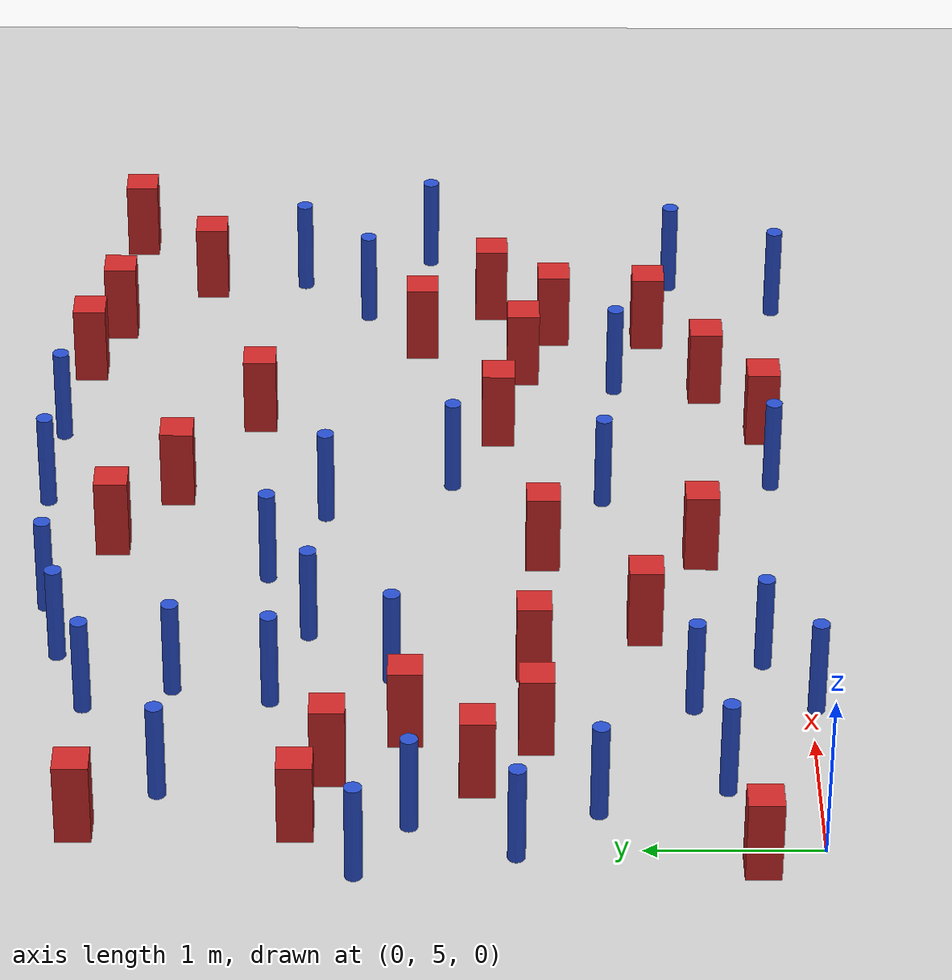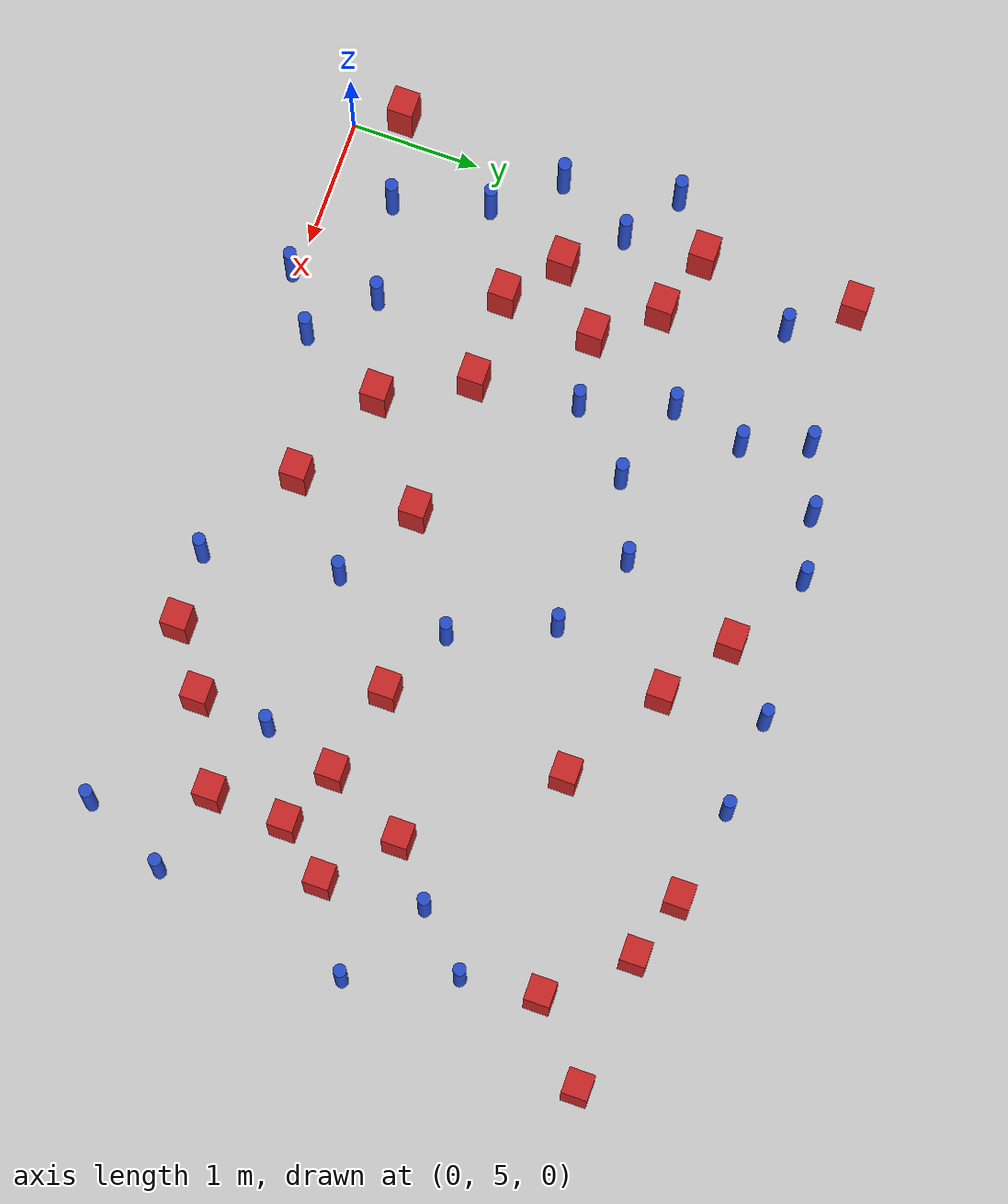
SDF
<sdf version="1.6">
 <world name="default">
  <model name="ground_plane">
   <static>1</static>
   <link name="link">
    <collision name="collision">
     <geometry><plane><normal>0 0 1</normal><size>100 100</size></plane></geometry>
     <surface><friction><ode><mu>100</mu><mu2>50</mu2></ode></friction></surface>
    </collision>
    <visual name="visual">
     <cast_shadows>0</cast_shadows>
     <geometry><plane><normal>0 0 1</normal><size>100 100</size></plane></geometry>
     <material>
      <ambient>1.0 1.0 1.0 1.0</ambient>
      <diffuse>0.8 0.8 0.8 1.0</diffuse>
      <specular>0.01 0.01 0.01 1.000000</specular>
     </material>
    </visual>
   </link>
  </model>
  <model name="pole_obstacle1">
   <static>true</static>
   <pose>1.57403197315 7.37901727268 7.38925637345e-09 -8.47170692799e-08 1.24976765033e-08 -1.74513093018e-07</pose>
   <link name="link">
    <pose>0 0 0.3 0 -0 0</pose>
    <inertial>
     <mass>1</mass>
     <inertia><ixx>0.145833</ixx><ixy>0</ixy><ixz>0</ixz><iyy>0.145833</iyy><iyz>0</iyz><izz>0.125</izz></inertia>
    </inertial>
    <collision name="collision">
     <geometry><cylinder><radius>0.05</radius><length>.6</length></cylinder></geometry>
    </collision>
    <visual name="visual">
     <geometry><cylinder><radius>0.05</radius><length>.6</length></cylinder></geometry>
     <material>
      <script><name>Gazebo/Blue</name><uri>file://media/materials/scripts/gazebo.material</uri></script>
     </material>
    </visual>
   </link>
  </model>
  <model name="pole_obstacle2">
   <static>true</static>
   <pose>2.5913801027 8.11951139135 7.38925637345e-09 -8.47170692793e-08 1.24976764408e-08 -1.74513093041e-07</pose>
   <link name="link">
    <pose>0 0 0.3 0 -0 0</pose>
    <inertial>
     <mass>1</mass>
     <inertia><ixx>0.145833</ixx><ixy>0</ixy><ixz>0</ixz><iyy>0.145833</iyy><iyz>0</iyz><izz>0.125</izz></inertia>
    </inertial>
    <collision name="collision">
     <geometry><cylinder><radius>0.05</radius><length>.6</length></cylinder></geometry>
    </collision>
    <visual name="visual">
     <geometry><cylinder><radius>0.05</radius><length>.6</length></cylinder></geometry>
     <material>
      <script><name>Gazebo/Blue</name><uri>file://media/materials/scripts/gazebo.material</uri></script>
     </material>
    </visual>
   </link>
  </model>
  <model name="square_post_obstacle3">
   <static>true</static>
   <pose>5.90210192159 8.586843425 1.91545236811e-07 -7.35059704564e-06 1.12565212e-07 2.39332434364e-05</pose>
   <link name="link">
    <pose>0 0 0.25 0 -0 0</pose>
    <inertial>
     <mass>100</mass>
     <inertia>
      <ixx>0.166667</ixx>
      <ixy>0</ixy>
      <ixz>0</ixz>
      <iyy>0.166667</iyy>
      <iyz>0</iyz>
      <izz>0.166667</izz>
     </inertia>
    </inertial>
    <collision name="collision"><geometry><box><size>.2 .2 .5</size></box></geometry></collision>
    <visual name="visual">
     <geometry><box><size>.2 .2 .5</size></box></geometry>
     <material>
      <script><name>Gazebo/Red</name><uri>file://media/materials/scripts/gazebo.material</uri></script>
     </material>
    </visual>
   </link>
  </model>
  <model name="pole_obstacle7">
   <static>true</static>
   <pose>3.5924293416 5.09383726458 7.38925637345e-09 -8.47170692798e-08 1.24976765033e-08 -1.74513093019e-07</pose>
   <link name="link">
    <pose>0 0 0.3 0 -0 0</pose>
    <inertial>
     <mass>1</mass>
     <inertia><ixx>0.145833</ixx><ixy>0</ixy><ixz>0</ixz><iyy>0.145833</iyy><iyz>0</iyz><izz>0.125</izz></inertia>
    </inertial>
    <collision name="collision">
     <geometry><cylinder><radius>0.05</radius><length>.6</length></cylinder></geometry>
    </collision>
    <visual name="visual">
     <geometry><cylinder><radius>0.05</radius><length>.6</length></cylinder></geometry>
     <material>
      <script><name>Gazebo/Blue</name><uri>file://media/materials/scripts/gazebo.material</uri></script>
     </material>
    </visual>
   </link>
  </model>
  <model name="pole_obstacle11">
   <static>true</static>
   <pose>0.533642133794 5.50967781415 7.38925637345e-09 -8.47170692799e-08 1.24976765073e-08 -1.74513093015e-07</pose>
   <link name="link">
    <pose>0 0 0.3 0 -0 0</pose>
    <inertial>
     <mass>1</mass>
     <inertia><ixx>0.145833</ixx><ixy>0</ixy><ixz>0</ixz><iyy>0.145833</iyy><iyz>0</iyz><izz>0.125</izz></inertia>
    </inertial>
    <collision name="collision">
     <geometry><cylinder><radius>0.05</radius><length>.6</length></cylinder></geometry>
    </collision>
    <visual name="visual">
     <geometry><cylinder><radius>0.05</radius><length>.6</length></cylinder></geometry>
     <material>
      <script><name>Gazebo/Blue</name><uri>file://media/materials/scripts/gazebo.material</uri></script>
     </material>
    </visual>
   </link>
  </model>
  <model name="pole_obstacle16">
   <static>true</static>
   <pose>-0.0589049012718 6.68679805793 7.38925637345e-09 -8.47170692799e-08 1.24976765086e-08 -1.74513093017e-07</pose>
   <link name="link">
    <pose>0 0 0.3 0 -0 0</pose>
    <inertial>
     <mass>1</mass>
     <inertia><ixx>0.145833</ixx><ixy>0</ixy><ixz>0</ixz><iyy>0.145833</iyy><iyz>0</iyz><izz>0.125</izz></inertia>
    </inertial>
    <collision name="collision">
     <geometry><cylinder><radius>0.05</radius><length>.6</length></cylinder></geometry>
    </collision>
    <visual name="visual">
     <geometry><cylinder><radius>0.05</radius><length>.6</length></cylinder></geometry>
     <material>
      <script><name>Gazebo/Blue</name><uri>file://media/materials/scripts/gazebo.material</uri></script>
     </material>
    </visual>
   </link>
  </model>
  <model name="square_post_obstacle18">
   <static>true</static>
   <pose>5.63057441655 6.77977751946 1.91545236811e-07 -7.35059704564e-06 1.12565212e-07 2.39332434364e-05</pose>
   <link name="link">
    <pose>0 0 0.25 0 -0 0</pose>
    <inertial>
     <mass>100</mass>
     <inertia>
      <ixx>0.166667</ixx>
      <ixy>0</ixy>
      <ixz>0</ixz>
      <iyy>0.166667</iyy>
      <iyz>0</iyz>
      <izz>0.166667</izz>
     </inertia>
    </inertial>
    <collision name="collision"><geometry><box><size>.2 .2 .5</size></box></geometry></collision>
    <visual name="visual">
     <geometry><box><size>.2 .2 .5</size></box></geometry>
     <material>
      <script><name>Gazebo/Red</name><uri>file://media/materials/scripts/gazebo.material</uri></script>
     </material>
    </visual>
   </link>
  </model>
  <model name="pole_obstacle31">
   <static>true</static>
   <pose>3.24161377764 7.79161407037 7.38925637345e-09 -8.47170692798e-08 1.24976765033e-08 -1.74513093019e-07</pose>
   <link name="link">
    <pose>0 0 0.3 0 -0 0</pose>
    <inertial>
     <mass>1</mass>
     <inertia><ixx>0.145833</ixx><ixy>0</ixy><ixz>0</ixz><iyy>0.145833</iyy><iyz>0</iyz><izz>0.125</izz></inertia>
    </inertial>
    <collision name="collision">
     <geometry><cylinder><radius>0.05</radius><length>.6</length></cylinder></geometry>
    </collision>
    <visual name="visual">
     <geometry><cylinder><radius>0.05</radius><length>.6</length></cylinder></geometry>
     <material>
      <script><name>Gazebo/Blue</name><uri>file://media/materials/scripts/gazebo.material</uri></script>
     </material>
    </visual>
   </link>
  </model>
  <model name="pole_obstacle41">
   <static>true</static>
   <pose>5.64052913057 4.96952285973 7.38925637345e-09 -8.47170692796e-08 1.24976764786e-08 -1.74513093032e-07</pose>
   <link name="link">
    <pose>0 0 0.3 0 -0 0</pose>
    <inertial>
     <mass>1</mass>
     <inertia><ixx>0.145833</ixx><ixy>0</ixy><ixz>0</ixz><iyy>0.145833</iyy><iyz>0</iyz><izz>0.125</izz></inertia>
    </inertial>
    <collision name="collision">
     <geometry><cylinder><radius>0.05</radius><length>.6</length></cylinder></geometry>
    </collision>
    <visual name="visual">
     <geometry><cylinder><radius>0.05</radius><length>.6</length></cylinder></geometry>
     <material>
      <script><name>Gazebo/Blue</name><uri>file://media/materials/scripts/gazebo.material</uri></script>
     </material>
    </visual>
   </link>
  </model>
  <model name="pole_obstacle47">
   <static>true</static>
   <pose>5.96579804063 7.98579329881 7.38925637345e-09 -8.47170692799e-08 1.24976765036e-08 -1.74513093018e-07</pose>
   <link name="link">
    <pose>0 0 0.3 0 -0 0</pose>
    <inertial>
     <mass>1</mass>
     <inertia><ixx>0.145833</ixx><ixy>0</ixy><ixz>0</ixz><iyy>0.145833</iyy><iyz>0</iyz><izz>0.125</izz></inertia>
    </inertial>
    <collision name="collision">
     <geometry><cylinder><radius>0.05</radius><length>.6</length></cylinder></geometry>
    </collision>
    <visual name="visual">
     <geometry><cylinder><radius>0.05</radius><length>.6</length></cylinder></geometry>
     <material>
      <script><name>Gazebo/Blue</name><uri>file://media/materials/scripts/gazebo.material</uri></script>
     </material>
    </visual>
   </link>
  </model>
  <model name="pole_obstacle53">
   <static>true</static>
   <pose>0.207067746759 7.27028966046 7.38925637345e-09 -8.471706928e-08 1.24976765124e-08 -1.74513093014e-07</pose>
   <link name="link">
    <pose>0 0 0.3 0 -0 0</pose>
    <inertial>
     <mass>1</mass>
     <inertia><ixx>0.145833</ixx><ixy>0</ixy><ixz>0</ixz><iyy>0.145833</iyy><iyz>0</iyz><izz>0.125</izz></inertia>
    </inertial>
    <collision name="collision">
     <geometry><cylinder><radius>0.05</radius><length>.6</length></cylinder></geometry>
    </collision>
    <visual name="visual">
     <geometry><cylinder><radius>0.05</radius><length>.6</length></cylinder></geometry>
     <material>
      <script><name>Gazebo/Blue</name><uri>file://media/materials/scripts/gazebo.material</uri></script>
     </material>
    </visual>
   </link>
  </model>
  <model name="pole_obstacle64">
   <static>true</static>
   <pose>1.79984485225 9.31005967538 7.38925637345e-09 -8.47170692798e-08 1.24976764881e-08 -1.74513093027e-07</pose>
   <link name="link">
    <pose>0 0 0.3 0 -0 0</pose>
    <inertial>
     <mass>1</mass>
     <inertia><ixx>0.145833</ixx><ixy>0</ixy><ixz>0</ixz><iyy>0.145833</iyy><iyz>0</iyz><izz>0.125</izz></inertia>
    </inertial>
    <collision name="collision">
     <geometry><cylinder><radius>0.05</radius><length>.6</length></cylinder></geometry>
    </collision>
    <visual name="visual">
     <geometry><cylinder><radius>0.05</radius><length>.6</length></cylinder></geometry>
     <material>
      <script><name>Gazebo/Blue</name><uri>file://media/materials/scripts/gazebo.material</uri></script>
     </material>
    </visual>
   </link>
  </model>
  <model name="square_post_obstacle54">
   <static>true</static>
   <pose>4.28912074097 8.22105510719 1.91545236811e-07 -7.35059704564e-06 1.12565212e-07 2.39332434364e-05</pose>
   <link name="link">
    <pose>0 0 0.25 0 -0 0</pose>
    <inertial>
     <mass>100</mass>
     <inertia>
      <ixx>0.166667</ixx>
      <ixy>0</ixy>
      <ixz>0</ixz>
      <iyy>0.166667</iyy>
      <iyz>0</iyz>
      <izz>0.166667</izz>
     </inertia>
    </inertial>
    <collision name="collision"><geometry><box><size>.2 .2 .5</size></box></geometry></collision>
    <visual name="visual">
     <geometry><box><size>.2 .2 .5</size></box></geometry>
     <material>
      <script><name>Gazebo/Red</name><uri>file://media/materials/scripts/gazebo.material</uri></script>
     </material>
    </visual>
   </link>
  </model>
  <model name="square_post_obstacle55">
   <static>true</static>
   <pose>2.93284468258 9.05396232431 1.91545236811e-07 -7.35059704564e-06 1.12565212e-07 2.39332434364e-05</pose>
   <link name="link">
    <pose>0 0 0.25 0 -0 0</pose>
    <inertial>
     <mass>100</mass>
     <inertia>
      <ixx>0.166667</ixx>
      <ixy>0</ixy>
      <ixz>0</ixz>
      <iyy>0.166667</iyy>
      <iyz>0</iyz>
      <izz>0.166667</izz>
     </inertia>
    </inertial>
    <collision name="collision"><geometry><box><size>.2 .2 .5</size></box></geometry></collision>
    <visual name="visual">
     <geometry><box><size>.2 .2 .5</size></box></geometry>
     <material>
      <script><name>Gazebo/Red</name><uri>file://media/materials/scripts/gazebo.material</uri></script>
     </material>
    </visual>
   </link>
  </model>
  <model name="pole_obstacle72">
   <static>true</static>
   <pose>1.46530541276 8.62909703748 7.38925637345e-09 -8.47170692798e-08 1.24976764881e-08 -1.74513093027e-07</pose>
   <link name="link">
    <pose>0 0 0.3 0 -0 0</pose>
    <inertial>
     <mass>1</mass>
     <inertia><ixx>0.145833</ixx><ixy>0</ixy><ixz>0</ixz><iyy>0.145833</iyy><iyz>0</iyz><izz>0.125</izz></inertia>
    </inertial>
    <collision name="collision">
     <geometry><cylinder><radius>0.05</radius><length>.6</length></cylinder></geometry>
    </collision>
    <visual name="visual">
     <geometry><cylinder><radius>0.05</radius><length>.6</length></cylinder></geometry>
     <material>
      <script><name>Gazebo/Blue</name><uri>file://media/materials/scripts/gazebo.material</uri></script>
     </material>
    </visual>
   </link>
  </model>
  <model name="square_post_obstacle62">
   <static>true</static>
   <pose>0.565453499938 6.89716072347 1.91545236811e-07 -7.35059704564e-06 1.12565212e-07 2.39332434364e-05</pose>
   <link name="link">
    <pose>0 0 0.25 0 -0 0</pose>
    <inertial>
     <mass>100</mass>
     <inertia>
      <ixx>0.166667</ixx>
      <ixy>0</ixy>
      <ixz>0</ixz>
      <iyy>0.166667</iyy>
      <iyz>0</iyz>
      <izz>0.166667</izz>
     </inertia>
    </inertial>
    <collision name="collision"><geometry><box><size>.2 .2 .5</size></box></geometry></collision>
    <visual name="visual">
     <geometry><box><size>.2 .2 .5</size></box></geometry>
     <material>
      <script><name>Gazebo/Red</name><uri>file://media/materials/scripts/gazebo.material</uri></script>
     </material>
    </visual>
   </link>
  </model>
  <model name="pole_obstacle74">
   <static>true</static>
   <pose>2.00342862465 7.86418572244 7.38925637345e-09 -8.47170692799e-08 1.24976765014e-08 -1.7451309302e-07</pose>
   <link name="link">
    <pose>0 0 0.3 0 -0 0</pose>
    <inertial>
     <mass>1</mass>
     <inertia><ixx>0.145833</ixx><ixy>0</ixy><ixz>0</ixz><iyy>0.145833</iyy><iyz>0</iyz><izz>0.125</izz></inertia>
    </inertial>
    <collision name="collision">
     <geometry><cylinder><radius>0.05</radius><length>.6</length></cylinder></geometry>
    </collision>
    <visual name="visual">
     <geometry><cylinder><radius>0.05</radius><length>.6</length></cylinder></geometry>
     <material>
      <script><name>Gazebo/Blue</name><uri>file://media/materials/scripts/gazebo.material</uri></script>
     </material>
    </visual>
   </link>
  </model>
  <model name="pole_obstacle78">
   <static>true</static>
   <pose>0.492716819287 8.66307397775 7.38925637345e-09 -8.47170692797e-08 1.24976764852e-08 -1.74513093028e-07</pose>
   <link name="link">
    <pose>0 0 0.3 0 -0 0</pose>
    <inertial>
     <mass>1</mass>
     <inertia><ixx>0.145833</ixx><ixy>0</ixy><ixz>0</ixz><iyy>0.145833</iyy><iyz>0</iyz><izz>0.125</izz></inertia>
    </inertial>
    <collision name="collision">
     <geometry><cylinder><radius>0.05</radius><length>.6</length></cylinder></geometry>
    </collision>
    <visual name="visual">
     <geometry><cylinder><radius>0.05</radius><length>.6</length></cylinder></geometry>
     <material>
      <script><name>Gazebo/Blue</name><uri>file://media/materials/scripts/gazebo.material</uri></script>
     </material>
    </visual>
   </link>
  </model>
  <model name="square_post_obstacle68">
   <static>true</static>
   <pose>2.01666054303 5.91865294078 1.91545236811e-07 -7.35059704564e-06 1.12565212e-07 2.39332434364e-05</pose>
   <link name="link">
    <pose>0 0 0.25 0 -0 0</pose>
    <inertial>
     <mass>100</mass>
     <inertia>
      <ixx>0.166667</ixx>
      <ixy>0</ixy>
      <ixz>0</ixz>
      <iyy>0.166667</iyy>
      <iyz>0</iyz>
      <izz>0.166667</izz>
     </inertia>
    </inertial>
    <collision name="collision"><geometry><box><size>.2 .2 .5</size></box></geometry></collision>
    <visual name="visual">
     <geometry><box><size>.2 .2 .5</size></box></geometry>
     <material>
      <script><name>Gazebo/Red</name><uri>file://media/materials/scripts/gazebo.material</uri></script>
     </material>
    </visual>
   </link>
  </model>
  <model name="square_post_obstacle73">
   <static>true</static>
   <pose>0.958053837621 6.56475185936 1.91545236811e-07 -7.35059704564e-06 1.12565212e-07 2.39332434364e-05</pose>
   <link name="link">
    <pose>0 0 0.25 0 -0 0</pose>
    <inertial>
     <mass>100</mass>
     <inertia>
      <ixx>0.166667</ixx>
      <ixy>0</ixy>
      <ixz>0</ixz>
      <iyy>0.166667</iyy>
      <iyz>0</iyz>
      <izz>0.166667</izz>
     </inertia>
    </inertial>
    <collision name="collision"><geometry><box><size>.2 .2 .5</size></box></geometry></collision>
    <visual name="visual">
     <geometry><box><size>.2 .2 .5</size></box></geometry>
     <material>
      <script><name>Gazebo/Red</name><uri>file://media/materials/scripts/gazebo.material</uri></script>
     </material>
    </visual>
   </link>
  </model>
  <model name="pole_obstacle90">
   <static>true</static>
   <pose>1.29207790326 5.66311853379 7.38925637345e-09 -8.47170692799e-08 1.24976765033e-08 -1.74513093018e-07</pose>
   <link name="link">
    <pose>0 0 0.3 0 -0 0</pose>
    <inertial>
     <mass>1</mass>
     <inertia><ixx>0.145833</ixx><ixy>0</ixy><ixz>0</ixz><iyy>0.145833</iyy><iyz>0</iyz><izz>0.125</izz></inertia>
    </inertial>
    <collision name="collision">
     <geometry><cylinder><radius>0.05</radius><length>.6</length></cylinder></geometry>
    </collision>
    <visual name="visual">
     <geometry><cylinder><radius>0.05</radius><length>.6</length></cylinder></geometry>
     <material>
      <script><name>Gazebo/Blue</name><uri>file://media/materials/scripts/gazebo.material</uri></script>
     </material>
    </visual>
   </link>
  </model>
  <model name="square_post_obstacle84">
   <static>true</static>
   <pose>5.39692821579 9.14887952335 1.91545236811e-07 -7.35059704564e-06 1.12565212e-07 2.39332434364e-05</pose>
   <link name="link">
    <pose>0 0 0.25 0 -0 0</pose>
    <inertial>
     <mass>100</mass>
     <inertia>
      <ixx>0.166667</ixx>
      <ixy>0</ixy>
      <ixz>0</ixz>
      <iyy>0.166667</iyy>
      <iyz>0</iyz>
      <izz>0.166667</izz>
     </inertia>
    </inertial>
    <collision name="collision"><geometry><box><size>.2 .2 .5</size></box></geometry></collision>
    <visual name="visual">
     <geometry><box><size>.2 .2 .5</size></box></geometry>
     <material>
      <script><name>Gazebo/Red</name><uri>file://media/materials/scripts/gazebo.material</uri></script>
     </material>
    </visual>
   </link>
  </model>
  <model name="pole_obstacle95">
   <static>true</static>
   <pose>3.5805048973 7.03011001787 7.38925637345e-09 -8.47170692798e-08 1.24976765033e-08 -1.74513093019e-07</pose>
   <link name="link">
    <pose>0 0 0.3 0 -0 0</pose>
    <inertial>
     <mass>1</mass>
     <inertia><ixx>0.145833</ixx><ixy>0</ixy><ixz>0</ixz><iyy>0.145833</iyy><iyz>0</iyz><izz>0.125</izz></inertia>
    </inertial>
    <collision name="collision">
     <geometry><cylinder><radius>0.05</radius><length>.6</length></cylinder></geometry>
    </collision>
    <visual name="visual">
     <geometry><cylinder><radius>0.05</radius><length>.6</length></cylinder></geometry>
     <material>
      <script><name>Gazebo/Blue</name><uri>file://media/materials/scripts/gazebo.material</uri></script>
     </material>
    </visual>
   </link>
  </model>
  <model name="square_post_obstacle89">
   <static>true</static>
   <pose>0.664742930996 7.72542410299 1.91545236811e-07 -7.35059704564e-06 1.12565212e-07 2.39332434364e-05</pose>
   <link name="link">
    <pose>0 0 0.25 0 -0 0</pose>
    <inertial>
     <mass>100</mass>
     <inertia>
      <ixx>0.166667</ixx>
      <ixy>0</ixy>
      <ixz>0</ixz>
      <iyy>0.166667</iyy>
      <iyz>0</iyz>
      <izz>0.166667</izz>
     </inertia>
    </inertial>
    <collision name="collision"><geometry><box><size>.2 .2 .5</size></box></geometry></collision>
    <visual name="visual">
     <geometry><box><size>.2 .2 .5</size></box></geometry>
     <material>
      <script><name>Gazebo/Red</name><uri>file://media/materials/scripts/gazebo.material</uri></script>
     </material>
    </visual>
   </link>
  </model>
  <model name="pole_obstacle98">
   <static>true</static>
   <pose>4.67914809474 6.01574066378 7.38925637345e-09 -8.47170692796e-08 1.24976764786e-08 -1.74513093032e-07</pose>
   <link name="link">
    <pose>0 0 0.3 0 -0 0</pose>
    <inertial>
     <mass>1</mass>
     <inertia><ixx>0.145833</ixx><ixy>0</ixy><ixz>0</ixz><iyy>0.145833</iyy><iyz>0</iyz><izz>0.125</izz></inertia>
    </inertial>
    <collision name="collision">
     <geometry><cylinder><radius>0.05</radius><length>.6</length></cylinder></geometry>
    </collision>
    <visual name="visual">
     <geometry><cylinder><radius>0.05</radius><length>.6</length></cylinder></geometry>
     <material>
      <script><name>Gazebo/Blue</name><uri>file://media/materials/scripts/gazebo.material</uri></script>
     </material>
    </visual>
   </link>
  </model>
  <model name="pole_obstacle101">
   <static>true</static>
   <pose>6.26414295263 7.17044186161 7.38925637345e-09 -8.47170692796e-08 1.24976764786e-08 -1.74513093032e-07</pose>
   <link name="link">
    <pose>0 0 0.3 0 -0 0</pose>
    <inertial>
     <mass>1</mass>
     <inertia><ixx>0.145833</ixx><ixy>0</ixy><ixz>0</ixz><iyy>0.145833</iyy><iyz>0</iyz><izz>0.125</izz></inertia>
    </inertial>
    <collision name="collision">
     <geometry><cylinder><radius>0.05</radius><length>.6</length></cylinder></geometry>
    </collision>
    <visual name="visual">
     <geometry><cylinder><radius>0.05</radius><length>.6</length></cylinder></geometry>
     <material>
      <script><name>Gazebo/Blue</name><uri>file://media/materials/scripts/gazebo.material</uri></script>
     </material>
    </visual>
   </link>
  </model>
  <model name="square_post_obstacle94">
   <static>true</static>
   <pose>6.45047289811 9.06751850785 1.91545236811e-07 -7.35059704564e-06 1.12565212e-07 2.39332434364e-05</pose>
   <link name="link">
    <pose>0 0 0.25 0 -0 0</pose>
    <inertial>
     <mass>100</mass>
     <inertia>
      <ixx>0.166667</ixx>
      <ixy>0</ixy>
      <ixz>0</ixz>
      <iyy>0.166667</iyy>
      <iyz>0</iyz>
      <izz>0.166667</izz>
     </inertia>
    </inertial>
    <collision name="collision"><geometry><box><size>.2 .2 .5</size></box></geometry></collision>
    <visual name="visual">
     <geometry><box><size>.2 .2 .5</size></box></geometry>
     <material>
      <script><name>Gazebo/Red</name><uri>file://media/materials/scripts/gazebo.material</uri></script>
     </material>
    </visual>
   </link>
  </model>
  <model name="square_post_obstacle105">
   <static>true</static>
   <pose>1.02723549142 7.29663299393 1.91545236811e-07 -7.35059704564e-06 1.12565212e-07 2.39332434364e-05</pose>
   <link name="link">
    <pose>0 0 0.25 0 -0 0</pose>
    <inertial>
     <mass>100</mass>
     <inertia>
      <ixx>0.166667</ixx>
      <ixy>0</ixy>
      <ixz>0</ixz>
      <iyy>0.166667</iyy>
      <iyz>0</iyz>
      <izz>0.166667</izz>
     </inertia>
    </inertial>
    <collision name="collision"><geometry><box><size>.2 .2 .5</size></box></geometry></collision>
    <visual name="visual">
     <geometry><box><size>.2 .2 .5</size></box></geometry>
     <material>
      <script><name>Gazebo/Red</name><uri>file://media/materials/scripts/gazebo.material</uri></script>
     </material>
    </visual>
   </link>
  </model>
  <model name="square_post_obstacle113">
   <static>true</static>
   <pose>4.63088764255 5.45287345867 1.91545236811e-07 -7.35059704564e-06 1.12565212e-07 2.39332434364e-05</pose>
   <link name="link">
    <pose>0 0 0.25 0 -0 0</pose>
    <inertial>
     <mass>100</mass>
     <inertia>
      <ixx>0.166667</ixx>
      <ixy>0</ixy>
      <ixz>0</ixz>
      <iyy>0.166667</iyy>
      <iyz>0</iyz>
      <izz>0.166667</izz>
     </inertia>
    </inertial>
    <collision name="collision"><geometry><box><size>.2 .2 .5</size></box></geometry></collision>
    <visual name="visual">
     <geometry><box><size>.2 .2 .5</size></box></geometry>
     <material>
      <script><name>Gazebo/Red</name><uri>file://media/materials/scripts/gazebo.material</uri></script>
     </material>
    </visual>
   </link>
  </model>
  <model name="square_post_obstacle115">
   <static>true</static>
   <pose>3.4704970924 8.69236890157 1.91545236811e-07 -7.35059704564e-06 1.12565212e-07 2.39332434364e-05</pose>
   <link name="link">
    <pose>0 0 0.25 0 -0 0</pose>
    <inertial>
     <mass>100</mass>
     <inertia>
      <ixx>0.166667</ixx>
      <ixy>0</ixy>
      <ixz>0</ixz>
      <iyy>0.166667</iyy>
      <iyz>0</iyz>
      <izz>0.166667</izz>
     </inertia>
    </inertial>
    <collision name="collision"><geometry><box><size>.2 .2 .5</size></box></geometry></collision>
    <visual name="visual">
     <geometry><box><size>.2 .2 .5</size></box></geometry>
     <material>
      <script><name>Gazebo/Red</name><uri>file://media/materials/scripts/gazebo.material</uri></script>
     </material>
    </visual>
   </link>
  </model>
  <model name="pole_obstacle117">
   <static>true</static>
   <pose>5.56615097828 7.56775488405 7.38925637345e-09 -8.47170692796e-08 1.24976764786e-08 -1.74513093032e-07</pose>
   <link name="link">
    <pose>0 0 0.3 0 -0 0</pose>
    <inertial>
     <mass>1</mass>
     <inertia><ixx>0.145833</ixx><ixy>0</ixy><ixz>0</ixz><iyy>0.145833</iyy><iyz>0</iyz><izz>0.125</izz></inertia>
    </inertial>
    <collision name="collision">
     <geometry><cylinder><radius>0.05</radius><length>.6</length></cylinder></geometry>
    </collision>
    <visual name="visual">
     <geometry><cylinder><radius>0.05</radius><length>.6</length></cylinder></geometry>
     <material>
      <script><name>Gazebo/Blue</name><uri>file://media/materials/scripts/gazebo.material</uri></script>
     </material>
    </visual>
   </link>
  </model>
  <model name="pole_obstacle124">
   <static>true</static>
   <pose>1.73070726445 5.25015986021 7.38925637345e-09 -8.47170692799e-08 1.24976765033e-08 -1.74513093018e-07</pose>
   <link name="link">
    <pose>0 0 0.3 0 -0 0</pose>
    <inertial>
     <mass>1</mass>
     <inertia><ixx>0.145833</ixx><ixy>0</ixy><ixz>0</ixz><iyy>0.145833</iyy><iyz>0</iyz><izz>0.125</izz></inertia>
    </inertial>
    <collision name="collision">
     <geometry><cylinder><radius>0.05</radius><length>.6</length></cylinder></geometry>
    </collision>
    <visual name="visual">
     <geometry><cylinder><radius>0.05</radius><length>.6</length></cylinder></geometry>
     <material>
      <script><name>Gazebo/Blue</name><uri>file://media/materials/scripts/gazebo.material</uri></script>
     </material>
    </visual>
   </link>
  </model>
  <model name="square_post_obstacle122">
   <static>true</static>
   <pose>4.89037951382 9.31066087084 1.91545236811e-07 -7.35059704564e-06 1.12565212e-07 2.39332434364e-05</pose>
   <link name="link">
    <pose>0 0 0.25 0 -0 0</pose>
    <inertial>
     <mass>100</mass>
     <inertia>
      <ixx>0.166667</ixx>
      <ixy>0</ixy>
      <ixz>0</ixz>
      <iyy>0.166667</iyy>
      <iyz>0</iyz>
      <izz>0.166667</izz>
     </inertia>
    </inertial>
    <collision name="collision"><geometry><box><size>.2 .2 .5</size></box></geometry></collision>
    <visual name="visual">
     <geometry><box><size>.2 .2 .5</size></box></geometry>
     <material>
      <script><name>Gazebo/Red</name><uri>file://media/materials/scripts/gazebo.material</uri></script>
     </material>
    </visual>
   </link>
  </model>
  <model name="square_post_obstacle129">
   <static>true</static>
   <pose>4.13521190248 6.74903641159 1.91545236811e-07 -7.35059704564e-06 1.12565212e-07 2.39332434364e-05</pose>
   <link name="link">
    <pose>0 0 0.25 0 -0 0</pose>
    <inertial>
     <mass>100</mass>
     <inertia>
      <ixx>0.166667</ixx>
      <ixy>0</ixy>
      <ixz>0</ixz>
      <iyy>0.166667</iyy>
      <iyz>0</iyz>
      <izz>0.166667</izz>
     </inertia>
    </inertial>
    <collision name="collision"><geometry><box><size>.2 .2 .5</size></box></geometry></collision>
    <visual name="visual">
     <geometry><box><size>.2 .2 .5</size></box></geometry>
     <material>
      <script><name>Gazebo/Red</name><uri>file://media/materials/scripts/gazebo.material</uri></script>
     </material>
    </visual>
   </link>
  </model>
  <model name="pole_obstacle139">
   <static>true</static>
   <pose>3.41035263347 6.12315111298 7.38925637345e-09 -8.47170692798e-08 1.24976765033e-08 -1.74513093019e-07</pose>
   <link name="link">
    <pose>0 0 0.3 0 -0 0</pose>
    <inertial>
     <mass>1</mass>
     <inertia><ixx>0.145833</ixx><ixy>0</ixy><ixz>0</ixz><iyy>0.145833</iyy><iyz>0</iyz><izz>0.125</izz></inertia>
    </inertial>
    <collision name="collision">
     <geometry><cylinder><radius>0.05</radius><length>.6</length></cylinder></geometry>
    </collision>
    <visual name="visual">
     <geometry><cylinder><radius>0.05</radius><length>.6</length></cylinder></geometry>
     <material>
      <script><name>Gazebo/Blue</name><uri>file://media/materials/scripts/gazebo.material</uri></script>
     </material>
    </visual>
   </link>
  </model>
  <model name="pole_obstacle143">
   <static>true</static>
   <pose>1.29174020536 9.12919920839 7.38925637345e-09 -8.47170692798e-08 1.24976764881e-08 -1.74513093027e-07</pose>
   <link name="link">
    <pose>0 0 0.3 0 -0 0</pose>
    <inertial>
     <mass>1</mass>
     <inertia><ixx>0.145833</ixx><ixy>0</ixy><ixz>0</ixz><iyy>0.145833</iyy><iyz>0</iyz><izz>0.125</izz></inertia>
    </inertial>
    <collision name="collision">
     <geometry><cylinder><radius>0.05</radius><length>.6</length></cylinder></geometry>
    </collision>
    <visual name="visual">
     <geometry><cylinder><radius>0.05</radius><length>.6</length></cylinder></geometry>
     <material>
      <script><name>Gazebo/Blue</name><uri>file://media/materials/scripts/gazebo.material</uri></script>
     </material>
    </visual>
   </link>
  </model>
  <model name="square_post_obstacle150">
   <static>true</static>
   <pose>2.77049625148 6.49701925575 1.91545236811e-07 -7.35059704564e-06 1.12565212e-07 2.39332434364e-05</pose>
   <link name="link">
    <pose>0 0 0.25 0 -0 0</pose>
    <inertial>
     <mass>100</mass>
     <inertia>
      <ixx>0.166667</ixx>
      <ixy>0</ixy>
      <ixz>0</ixz>
      <iyy>0.166667</iyy>
      <iyz>0</iyz>
      <izz>0.166667</izz>
     </inertia>
    </inertial>
    <collision name="collision"><geometry><box><size>.2 .2 .5</size></box></geometry></collision>
    <visual name="visual">
     <geometry><box><size>.2 .2 .5</size></box></geometry>
     <material>
      <script><name>Gazebo/Red</name><uri>file://media/materials/scripts/gazebo.material</uri></script>
     </material>
    </visual>
   </link>
  </model>
  <model name="square_post_obstacle153">
   <static>true</static>
   <pose>5.15467483725 7.21966940829 1.91545236811e-07 -7.35059704564e-06 1.12565212e-07 2.39332434364e-05</pose>
   <link name="link">
    <pose>0 0 0.25 0 -0 0</pose>
    <inertial>
     <mass>100</mass>
     <inertia>
      <ixx>0.166667</ixx>
      <ixy>0</ixy>
      <ixz>0</ixz>
      <iyy>0.166667</iyy>
      <iyz>0</iyz>
      <izz>0.166667</izz>
     </inertia>
    </inertial>
    <collision name="collision"><geometry><box><size>.2 .2 .5</size></box></geometry></collision>
    <visual name="visual">
     <geometry><box><size>.2 .2 .5</size></box></geometry>
     <material>
      <script><name>Gazebo/Red</name><uri>file://media/materials/scripts/gazebo.material</uri></script>
     </material>
    </visual>
   </link>
  </model>
  <model name="square_post_obstacle162">
   <static>true</static>
   <pose>0.164729977461 7.88962539093 1.91545236811e-07 -7.35059704564e-06 1.12565212e-07 2.39332434364e-05</pose>
   <link name="link">
    <pose>0 0 0.25 0 -0 0</pose>
    <inertial>
     <mass>100</mass>
     <inertia>
      <ixx>0.166667</ixx>
      <ixy>0</ixy>
      <ixz>0</ixz>
      <iyy>0.166667</iyy>
      <iyz>0</iyz>
      <izz>0.166667</izz>
     </inertia>
    </inertial>
    <collision name="collision"><geometry><box><size>.2 .2 .5</size></box></geometry></collision>
    <visual name="visual">
     <geometry><box><size>.2 .2 .5</size></box></geometry>
     <material>
      <script><name>Gazebo/Red</name><uri>file://media/materials/scripts/gazebo.material</uri></script>
     </material>
    </visual>
   </link>
  </model>
  <model name="square_post_obstacle164">
   <static>true</static>
   <pose>5.31592673885 6.38820734095 1.91545236811e-07 -7.35059704564e-06 1.12565212e-07 2.39332434364e-05</pose>
   <link name="link">
    <pose>0 0 0.25 0 -0 0</pose>
    <inertial>
     <mass>100</mass>
     <inertia>
      <ixx>0.166667</ixx>
      <ixy>0</ixy>
      <ixz>0</ixz>
      <iyy>0.166667</iyy>
      <iyz>0</iyz>
      <izz>0.166667</izz>
     </inertia>
    </inertial>
    <collision name="collision"><geometry><box><size>.2 .2 .5</size></box></geometry></collision>
    <visual name="visual">
     <geometry><box><size>.2 .2 .5</size></box></geometry>
     <material>
      <script><name>Gazebo/Red</name><uri>file://media/materials/scripts/gazebo.material</uri></script>
     </material>
    </visual>
   </link>
  </model>
  <model name="square_post_obstacle166">
   <static>true</static>
   <pose>4.84340130114 6.58752222666 1.91545236811e-07 -7.35059704564e-06 1.12565212e-07 2.39332434364e-05</pose>
   <link name="link">
    <pose>0 0 0.25 0 -0 0</pose>
    <inertial>
     <mass>100</mass>
     <inertia>
      <ixx>0.166667</ixx>
      <ixy>0</ixy>
      <ixz>0</ixz>
      <iyy>0.166667</iyy>
      <iyz>0</iyz>
      <izz>0.166667</izz>
     </inertia>
    </inertial>
    <collision name="collision"><geometry><box><size>.2 .2 .5</size></box></geometry></collision>
    <visual name="visual">
     <geometry><box><size>.2 .2 .5</size></box></geometry>
     <material>
      <script><name>Gazebo/Red</name><uri>file://media/materials/scripts/gazebo.material</uri></script>
     </material>
    </visual>
   </link>
  </model>
  <model name="square_post_obstacle170">
   <static>true</static>
   <pose>1.65463411906 6.56799251243 1.91545236811e-07 -7.35059704564e-06 1.12565212e-07 2.39332434364e-05</pose>
   <link name="link">
    <pose>0 0 0.25 0 -0 0</pose>
    <inertial>
     <mass>100</mass>
     <inertia>
      <ixx>0.166667</ixx>
      <ixy>0</ixy>
      <ixz>0</ixz>
      <iyy>0.166667</iyy>
      <iyz>0</iyz>
      <izz>0.166667</izz>
     </inertia>
    </inertial>
    <collision name="collision"><geometry><box><size>.2 .2 .5</size></box></geometry></collision>
    <visual name="visual">
     <geometry><box><size>.2 .2 .5</size></box></geometry>
     <material>
      <script><name>Gazebo/Red</name><uri>file://media/materials/scripts/gazebo.material</uri></script>
     </material>
    </visual>
   </link>
  </model>
  <model name="pole_obstacle173">
   <static>true</static>
   <pose>3.40496392075 9.47900574969 7.38925637345e-09 -8.47170692793e-08 1.24976764408e-08 -1.74513093041e-07</pose>
   <link name="link">
    <pose>0 0 0.3 0 -0 0</pose>
    <inertial>
     <mass>1</mass>
     <inertia><ixx>0.145833</ixx><ixy>0</ixy><ixz>0</ixz><iyy>0.145833</iyy><iyz>0</iyz><izz>0.125</izz></inertia>
    </inertial>
    <collision name="collision">
     <geometry><cylinder><radius>0.05</radius><length>.6</length></cylinder></geometry>
    </collision>
    <visual name="visual">
     <geometry><cylinder><radius>0.05</radius><length>.6</length></cylinder></geometry>
     <material>
      <script><name>Gazebo/Blue</name><uri>file://media/materials/scripts/gazebo.material</uri></script>
     </material>
    </visual>
   </link>
  </model>
  <model name="pole_obstacle175">
   <static>true</static>
   <pose>4.14299053738 9.4344835947 7.38925637345e-09 -8.471706928e-08 1.24976765081e-08 -1.74513093015e-07</pose>
   <link name="link">
    <pose>0 0 0.3 0 -0 0</pose>
    <inertial>
     <mass>1</mass>
     <inertia><ixx>0.145833</ixx><ixy>0</ixy><ixz>0</ixz><iyy>0.145833</iyy><iyz>0</iyz><izz>0.125</izz></inertia>
    </inertial>
    <collision name="collision">
     <geometry><cylinder><radius>0.05</radius><length>.6</length></cylinder></geometry>
    </collision>
    <visual name="visual">
     <geometry><cylinder><radius>0.05</radius><length>.6</length></cylinder></geometry>
     <material>
      <script><name>Gazebo/Blue</name><uri>file://media/materials/scripts/gazebo.material</uri></script>
     </material>
    </visual>
   </link>
  </model>
  <model name="pole_obstacle177">
   <static>true</static>
   <pose>0.321161335669 6.22843623969 7.38925637345e-09 -8.471706928e-08 1.24976765079e-08 -1.74513093015e-07</pose>
   <link name="link">
    <pose>0 0 0.3 0 -0 0</pose>
    <inertial>
     <mass>1</mass>
     <inertia><ixx>0.145833</ixx><ixy>0</ixy><ixz>0</ixz><iyy>0.145833</iyy><iyz>0</iyz><izz>0.125</izz></inertia>
    </inertial>
    <collision name="collision">
     <geometry><cylinder><radius>0.05</radius><length>.6</length></cylinder></geometry>
    </collision>
    <visual name="visual">
     <geometry><cylinder><radius>0.05</radius><length>.6</length></cylinder></geometry>
     <material>
      <script><name>Gazebo/Blue</name><uri>file://media/materials/scripts/gazebo.material</uri></script>
     </material>
    </visual>
   </link>
  </model>
  <model name="square_post_obstacle178">
   <static>true</static>
   <pose>2.79121129794 5.56008106115 1.91545236811e-07 -7.35059704564e-06 1.12565212e-07 2.39332434364e-05</pose>
   <link name="link">
    <pose>0 0 0.25 0 -0 0</pose>
    <inertial>
     <mass>100</mass>
     <inertia>
      <ixx>0.166667</ixx>
      <ixy>0</ixy>
      <ixz>0</ixz>
      <iyy>0.166667</iyy>
      <iyz>0</iyz>
      <izz>0.166667</izz>
     </inertia>
    </inertial>
    <collision name="collision"><geometry><box><size>.2 .2 .5</size></box></geometry></collision>
    <visual name="visual">
     <geometry><box><size>.2 .2 .5</size></box></geometry>
     <material>
      <script><name>Gazebo/Red</name><uri>file://media/materials/scripts/gazebo.material</uri></script>
     </material>
    </visual>
   </link>
  </model>
  <model name="square_post_obstacle179">
   <static>true</static>
   <pose>5.28684040939 5.7905940764 1.91545236811e-07 -7.35059704564e-06 1.12565212e-07 2.39332434364e-05</pose>
   <link name="link">
    <pose>0 0 0.25 0 -0 0</pose>
    <inertial>
     <mass>100</mass>
     <inertia>
      <ixx>0.166667</ixx>
      <ixy>0</ixy>
      <ixz>0</ixz>
      <iyy>0.166667</iyy>
      <iyz>0</iyz>
      <izz>0.166667</izz>
     </inertia>
    </inertial>
    <collision name="collision"><geometry><box><size>.2 .2 .5</size></box></geometry></collision>
    <visual name="visual">
     <geometry><box><size>.2 .2 .5</size></box></geometry>
     <material>
      <script><name>Gazebo/Red</name><uri>file://media/materials/scripts/gazebo.material</uri></script>
     </material>
    </visual>
   </link>
  </model>
  <model name="pole_obstacle183">
   <static>true</static>
   <pose>1.35396749907 8.06809316985 7.38925637345e-09 -8.47170692798e-08 1.24976764881e-08 -1.74513093027e-07</pose>
   <link name="link">
    <pose>0 0 0.3 0 -0 0</pose>
    <inertial>
     <mass>1</mass>
     <inertia><ixx>0.145833</ixx><ixy>0</ixy><ixz>0</ixz><iyy>0.145833</iyy><iyz>0</iyz><izz>0.125</izz></inertia>
    </inertial>
    <collision name="collision">
     <geometry><cylinder><radius>0.05</radius><length>.6</length></cylinder></geometry>
    </collision>
    <visual name="visual">
     <geometry><cylinder><radius>0.05</radius><length>.6</length></cylinder></geometry>
     <material>
      <script><name>Gazebo/Blue</name><uri>file://media/materials/scripts/gazebo.material</uri></script>
     </material>
    </visual>
   </link>
  </model>
  <model name="square_post_obstacle187">
   <static>true</static>
   <pose>0.159235424499 9.09710029441 1.91545236811e-07 -7.35059704564e-06 1.12565212e-07 2.39332434364e-05</pose>
   <link name="link">
    <pose>0 0 0.25 0 -0 0</pose>
    <inertial>
     <mass>100</mass>
     <inertia>
      <ixx>0.166667</ixx>
      <ixy>0</ixy>
      <ixz>0</ixz>
      <iyy>0.166667</iyy>
      <iyz>0</iyz>
      <izz>0.166667</izz>
     </inertia>
    </inertial>
    <collision name="collision"><geometry><box><size>.2 .2 .5</size></box></geometry></collision>
    <visual name="visual">
     <geometry><box><size>.2 .2 .5</size></box></geometry>
     <material>
      <script><name>Gazebo/Red</name><uri>file://media/materials/scripts/gazebo.material</uri></script>
     </material>
    </visual>
   </link>
  </model>
  <model name="square_post_obstacle190">
   <static>true</static>
   <pose>-0.1510457505 5.35945805307 1.91545236811e-07 -7.35059704564e-06 1.12565212e-07 2.39332434364e-05</pose>
   <link name="link">
    <pose>0 0 0.25 0 -0 0</pose>
    <inertial>
     <mass>100</mass>
     <inertia>
      <ixx>0.166667</ixx>
      <ixy>0</ixy>
      <ixz>0</ixz>
      <iyy>0.166667</iyy>
      <iyz>0</iyz>
      <izz>0.166667</izz>
     </inertia>
    </inertial>
    <collision name="collision"><geometry><box><size>.2 .2 .5</size></box></geometry></collision>
    <visual name="visual">
     <geometry><box><size>.2 .2 .5</size></box></geometry>
     <material>
      <script><name>Gazebo/Red</name><uri>file://media/materials/scripts/gazebo.material</uri></script>
     </material>
    </visual>
   </link>
  </model>
  <model name="pole_obstacle187">
   <static>true</static>
   <pose>-0.224990629502 7.5654377575 7.38925637345e-09 -8.47170692799e-08 1.2497676507e-08 -1.74513093018e-07</pose>
   <link name="link">
    <pose>0 0 0.3 0 -0 0</pose>
    <inertial>
     <mass>1</mass>
     <inertia><ixx>0.145833</ixx><ixy>0</ixy><ixz>0</ixz><iyy>0.145833</iyy><iyz>0</iyz><izz>0.125</izz></inertia>
    </inertial>
    <collision name="collision">
     <geometry><cylinder><radius>0.05</radius><length>.6</length></cylinder></geometry>
    </collision>
    <visual name="visual">
     <geometry><cylinder><radius>0.05</radius><length>.6</length></cylinder></geometry>
     <material>
      <script><name>Gazebo/Blue</name><uri>file://media/materials/scripts/gazebo.material</uri></script>
     </material>
    </visual>
   </link>
  </model>
  <model name="pole_obstacle189">
   <static>true</static>
   <pose>2.29202184306 9.41078154382 7.38925637345e-09 -8.47170692793e-08 1.24976764408e-08 -1.74513093041e-07</pose>
   <link name="link">
    <pose>0 0 0.3 0 -0 0</pose>
    <inertial>
     <mass>1</mass>
     <inertia><ixx>0.145833</ixx><ixy>0</ixy><ixz>0</ixz><iyy>0.145833</iyy><iyz>0</iyz><izz>0.125</izz></inertia>
    </inertial>
    <collision name="collision">
     <geometry><cylinder><radius>0.05</radius><length>.6</length></cylinder></geometry>
    </collision>
    <visual name="visual">
     <geometry><cylinder><radius>0.05</radius><length>.6</length></cylinder></geometry>
     <material>
      <script><name>Gazebo/Blue</name><uri>file://media/materials/scripts/gazebo.material</uri></script>
     </material>
    </visual>
   </link>
  </model>
  <model name="pole_obstacle194">
   <static>true</static>
   <pose>1.29308658041 4.97039727576 7.38925637345e-09 -8.47170692799e-08 1.24976765033e-08 -1.74513093018e-07</pose>
   <link name="link">
    <pose>0 0 0.3 0 -0 0</pose>
    <inertial>
     <mass>1</mass>
     <inertia><ixx>0.145833</ixx><ixy>0</ixy><ixz>0</ixz><iyy>0.145833</iyy><iyz>0</iyz><izz>0.125</izz></inertia>
    </inertial>
    <collision name="collision">
     <geometry><cylinder><radius>0.05</radius><length>.6</length></cylinder></geometry>
    </collision>
    <visual name="visual">
     <geometry><cylinder><radius>0.05</radius><length>.6</length></cylinder></geometry>
     <material>
      <script><name>Gazebo/Blue</name><uri>file://media/materials/scripts/gazebo.material</uri></script>
     </material>
    </visual>
   </link>
  </model>
  <model name="pole_obstacle202">
   <static>true</static>
   <pose>5.94881964542 5.62344780747 7.38925637345e-09 -8.47170692796e-08 1.24976764786e-08 -1.74513093032e-07</pose>
   <link name="link">
    <pose>0 0 0.3 0 -0 0</pose>
    <inertial>
     <mass>1</mass>
     <inertia><ixx>0.145833</ixx><ixy>0</ixy><ixz>0</ixz><iyy>0.145833</iyy><iyz>0</iyz><izz>0.125</izz></inertia>
    </inertial>
    <collision name="collision">
     <geometry><cylinder><radius>0.05</radius><length>.6</length></cylinder></geometry>
    </collision>
    <visual name="visual">
     <geometry><cylinder><radius>0.05</radius><length>.6</length></cylinder></geometry>
     <material>
      <script><name>Gazebo/Blue</name><uri>file://media/materials/scripts/gazebo.material</uri></script>
     </material>
    </visual>
   </link>
  </model>
  <model name="square_post_obstacle216">
   <static>true</static>
   <pose>4.16010335016 5.12160110795 1.91545236811e-07 -7.35059704564e-06 1.12565212e-07 2.39332434364e-05</pose>
   <link name="link">
    <pose>0 0 0.25 0 -0 0</pose>
    <inertial>
     <mass>100</mass>
     <inertia>
      <ixx>0.166667</ixx>
      <ixy>0</ixy>
      <ixz>0</ixz>
      <iyy>0.166667</iyy>
      <iyz>0</iyz>
      <izz>0.166667</izz>
     </inertia>
    </inertial>
    <collision name="collision"><geometry><box><size>.2 .2 .5</size></box></geometry></collision>
    <visual name="visual">
     <geometry><box><size>.2 .2 .5</size></box></geometry>
     <material>
      <script><name>Gazebo/Red</name><uri>file://media/materials/scripts/gazebo.material</uri></script>
     </material>
    </visual>
   </link>
  </model>
 </world>
</sdf>
